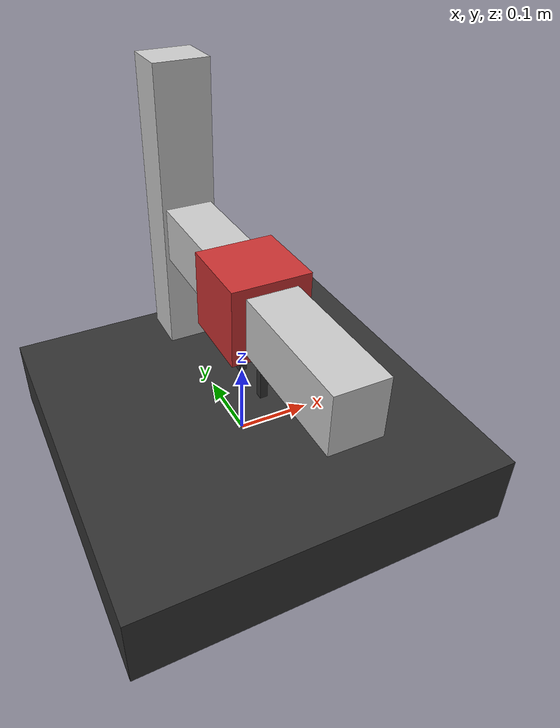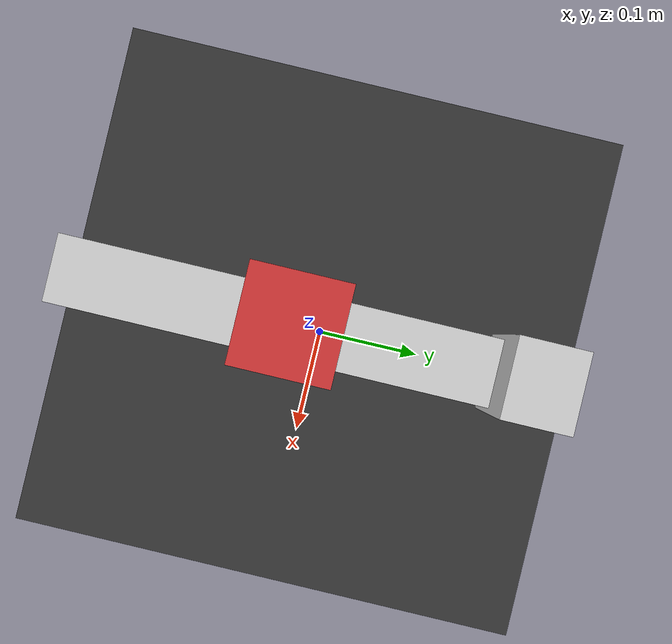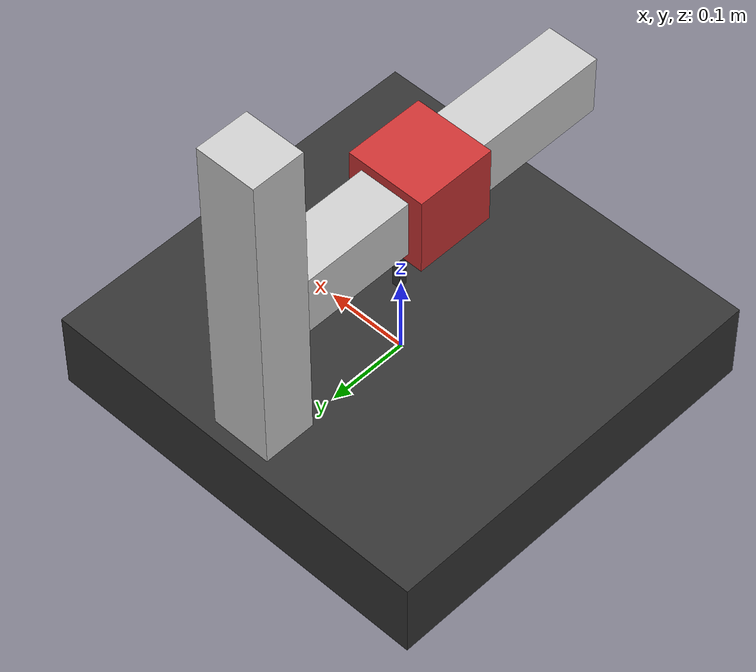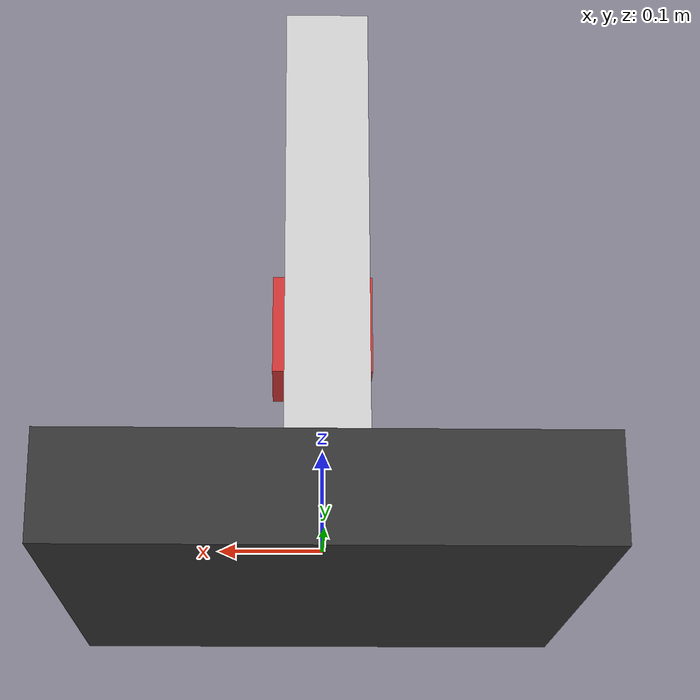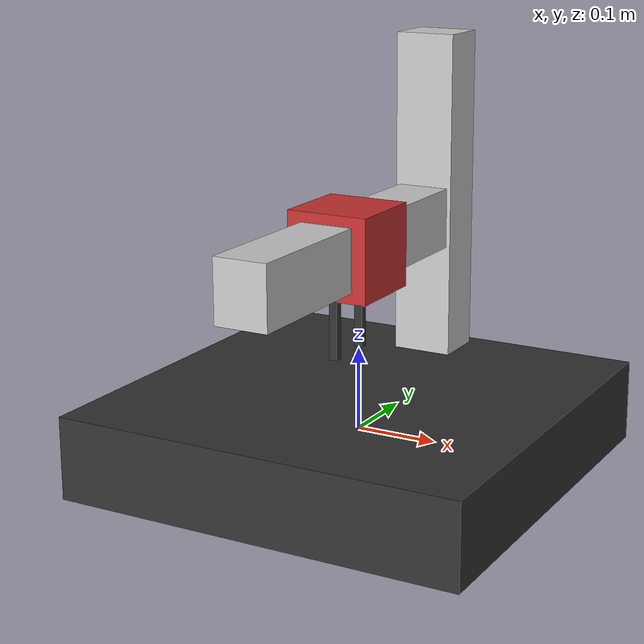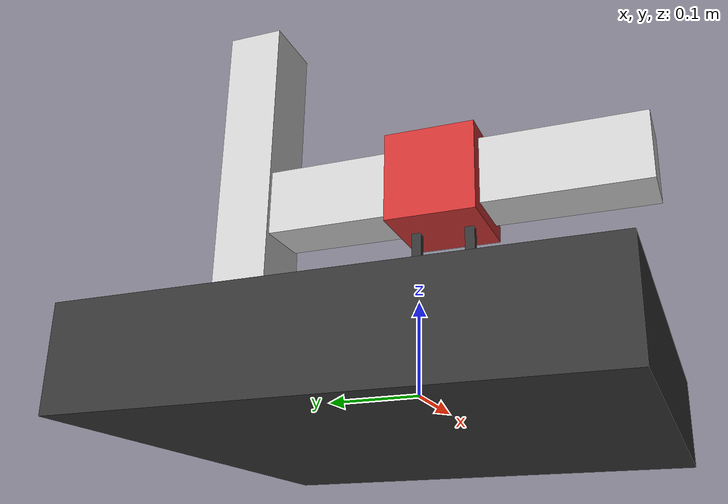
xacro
<?xml version="1.0"?>
<robot xmlns:xacro="http://www.ros.org/wiki/xacro" name="chiquinho">

      <!-- BGN Include -->
      <xacro:include filename="$(find chiquinho)/urdf/link_joint.xacro"/>
      <!-- END Include-->

      <!-- BGN Robot description -->
      <box_link name="base_link"
                origin_xyz="0 0 0" origin_rpy="0 0 0"
                mass="0.2"
                ixx="0.004333" ixy="0" ixz="0"
                iyy="0.004333" iyz="0"
                izz="0.008333"
                size="0.5 0.5 0.1"
                color="Black"/>

      <robot_joint parent="base_link" child="link_1" type="prismatic"
                   origin_xyz="0 0.2 0.2275" origin_rpy="0 0 0"
                   axis="1 0 0"
                   limit_l="-0.15" limit_u="0.15" limit_v="0.1" limit_e="1000.0"/>

      <box_link name="link_1"
                origin_xyz="0 0 0" origin_rpy="0 0 0"
                mass="0.05"
                ixx="0.0008802" ixy="0" ixz="0"
                iyy="0.000886"  iyz="0"
                izz="0.00004104"
                size="0.075 0.065 0.455"
                color="White"/>

        <robot_joint parent="link_1" child="link_2" type="prismatic"
               origin_xyz="0 -0.2275 0" origin_rpy="0 0 0"
               axis="0 0 1"
               limit_l="-0.06" limit_u="0.15" limit_v="0.1" limit_e="1000.0"/>

      <box_link name="link_2"
            origin_xyz="0 0 0" origin_rpy="0 0 0"
            mass="0.05"
            ixx="0.000886"   ixy="0" ixz="0"
            iyy="0.00004104" iyz="0"
            izz="0.0008802"
            size="0.065 0.455 0.075"
            color="White"/>

      <robot_joint parent="link_2" child="link_3" type="prismatic"
           origin_xyz="0 0 0" origin_rpy="0 0 0"
           axis="0 1 0"
           limit_l="-0.10" limit_u="0.15" limit_v="0.1" limit_e="1000.0"/>

      <box_link name="link_3"
        origin_xyz="0 0 0" origin_rpy="0 0 0"
        mass="0.05"
        ixx="0.00008333"   ixy="0" ixz="0"
        iyy="0.00008333"   iyz="0"
        izz="0.00008333"
        size="0.1 0.1 0.1"
        color="Red"/>

      <robot_joint parent="link_3" child="end_effector_1" type="fixed"
           origin_xyz="0 0.03 -0.085" origin_rpy="0 0 0"
           axis="0 0 0"
           limit_l="0" limit_u="0" limit_v="0" limit_e="0"/>

      <box_link name="end_effector_1"
                origin_xyz="0 0 0" origin_rpy="0 0 0"
                mass="0.01"
                ixx="0" ixy="0" ixz="0"
                iyy="0" iyz="0"
                izz="0"
                size="0.01 0.01 0.08"
                color="Black"/>

      <robot_joint parent="link_3" child="end_effector_2" type="prismatic"
                   origin_xyz="0 -0.03 -0.085" origin_rpy="0 0 0"
                   axis="0 1 0"
                   limit_l="0.04" limit_u="0" limit_v="0.1" limit_e="1000.0"/>

      <box_link name="end_effector_2"
                origin_xyz="0 0 0" origin_rpy="0 0 0"
                mass="0.01"
                ixx="0" ixy="0" ixz="0"
                iyy="0" iyz="0"
                izz="0"
                size="0.01 0.01 0.08"
                color="Black"/>

      <!-- END Robot description -->

      <!-- BNG Gazebo -->
      <gazebo>
            <plugin name="gazebo_ros_control" filename="libgazebo_ros_control.so"/>
      </gazebo>

</robot>

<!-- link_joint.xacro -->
<robot xmlns:xacro="http://www.ros.org/wiki/xacro">

    <material name="Red">
        <color rgba="0.8 0.2 0.2 1.0"/>
    </material>

    <material name="White">
        <color rgba="0.8 0.8 0.8 1.0"/>
    </material>

    <material name="Black">
        <color rgba="0.2 0.2 0.2 1.0"/>
    </material>

    <xacro:macro name="robot_joint" params="parent child type origin_xyz origin_rpy axis limit_e limit_u limit_l limit_v">
        <joint name="${parent}__${child}" type="${type}">
            <axis xyz="${axis}" />
            <limit effort="${limit_e}" lower="${limit_l}" upper="${limit_u}" velocity="${limit_v}" />
            <origin rpy="${origin_rpy}" xyz="${origin_xyz}" />
            <parent link="${parent}" />
            <child link="${child}" />
        </joint>
        <transmission name="trans_${parent}__${child}">
            <type>transmission_interface/SimpleTransmission</type>
            <joint name="${parent}__${child}">
                <hardwareInterface>hardware_interface/PositionJointInterface</hardwareInterface>
            </joint>
            <actuator name="motor_${parent}__${child}">
                <hardwareInterface>hardware_interface/PositionJointInterface</hardwareInterface>
                <mechanicalReduction>1</mechanicalReduction>
            </actuator>
        </transmission>
    </xacro:macro>

    <xacro:macro name="box_link" params="name origin_xyz origin_rpy mass ixx ixy ixz iyy iyz izz size color">
        <link name="${name}">
            <inertial>
                <origin xyz="${origin_xyz}" rpy="${origin_rpy}"/>
                <mass value="${mass}"/>
                <inertia ixx="${ixx}" ixy="${ixy}" ixz="${ixz}"
                         iyy="${iyy}" iyz="${iyz}"
                         izz="${izz}"/>
            </inertial>
            <visual>
                <origin xyz="${origin_xyz}" rpy="${origin_rpy}"/>
                <geometry>
                    <box size="${size}"/>
                </geometry>
                <material name="${color}"/>
            </visual>
            <collision>
                <origin xyz="${origin_xyz}" rpy="${origin_rpy}"/>
                <geometry>
                    <box size="${size}"/>
                </geometry>
            </collision>
        </link>
    </xacro:macro>

</robot>
